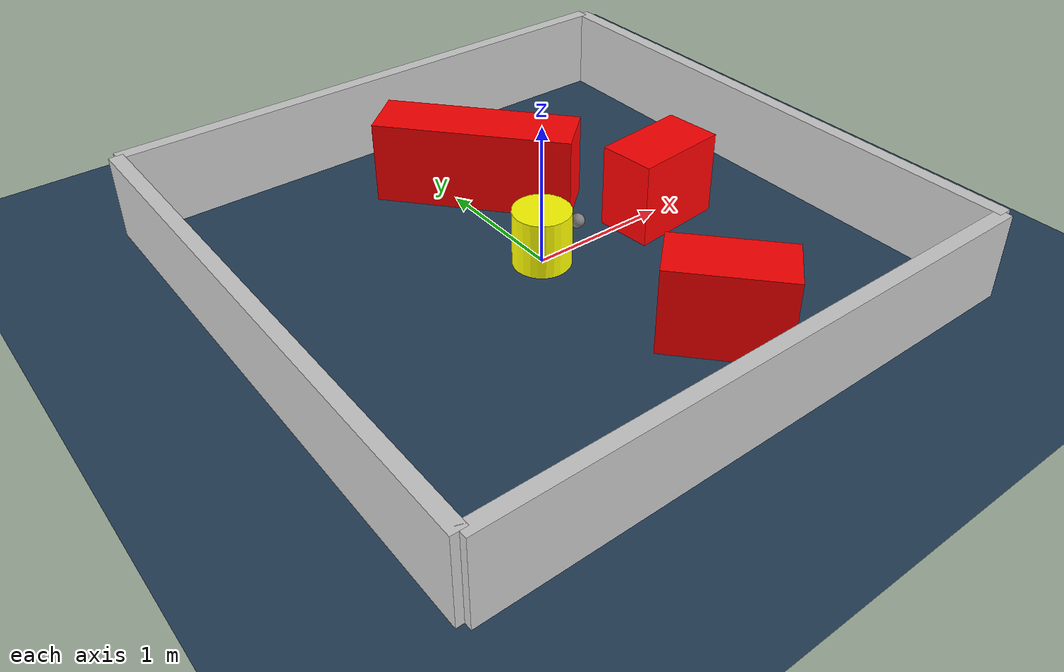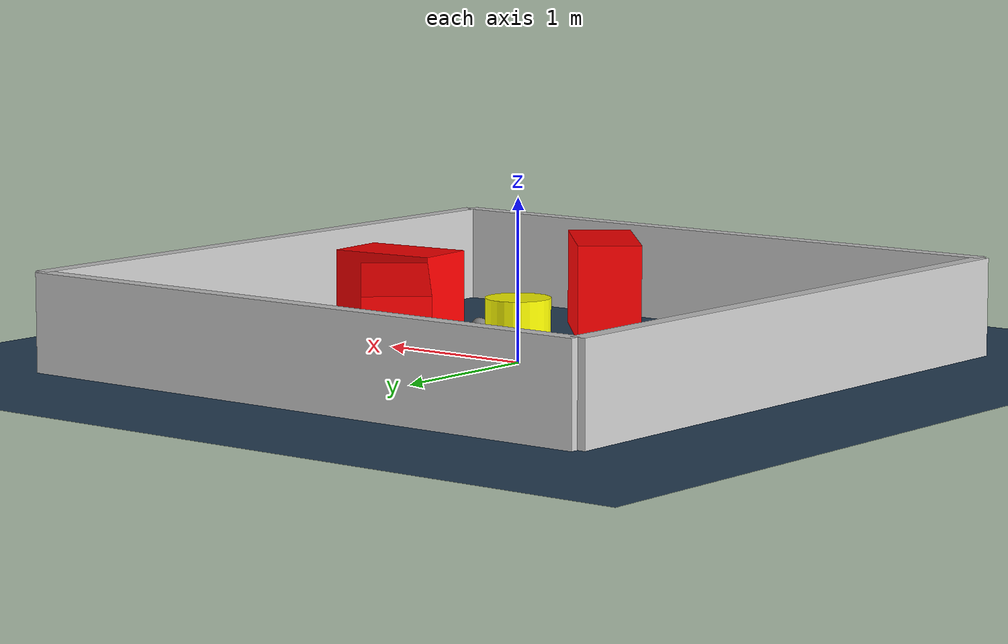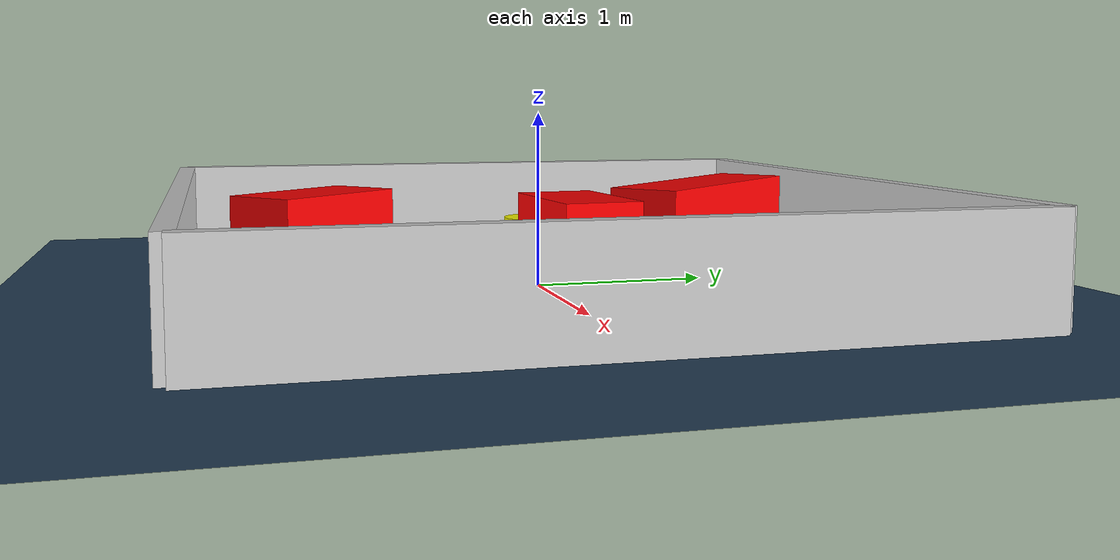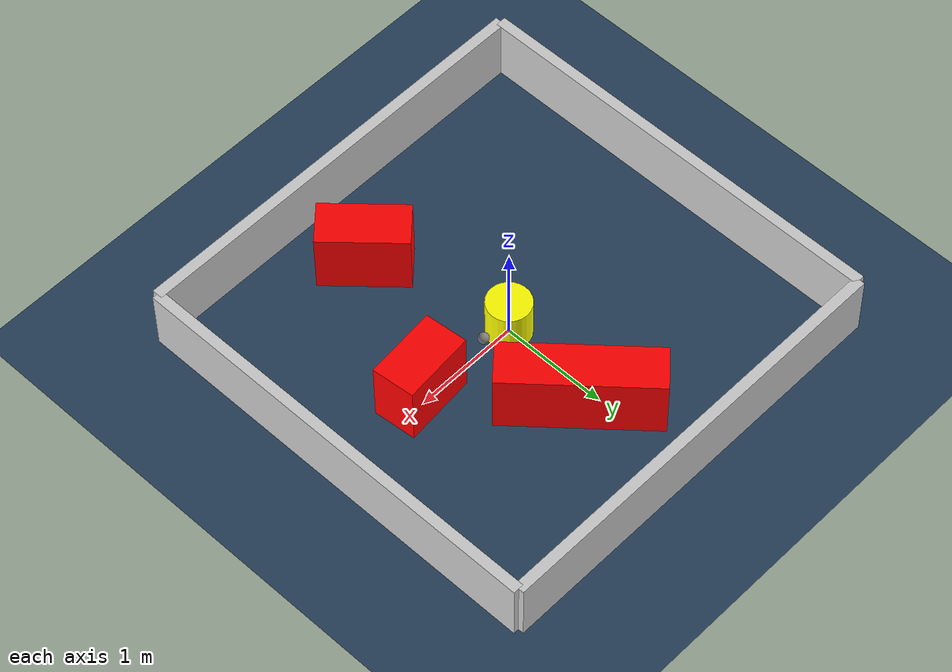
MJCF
<?xml version="1.0" ?>
<mujoco model="generated_environment">
  <option timestep="0.01" integrator="RK4" cone="elliptic"/>
  <default>
    <geom density="1"/>
  </default>
  <asset>
    <texture builtin="gradient" height="3072" rgb1="0.3 0.5 0.7" rgb2="0 0 0" type="skybox" width="512"/>
    <texture builtin="checker" height="300" mark="edge" markrgb="0.8 0.8 0.8" name="groundplane" rgb1="0.2 0.3 0.4" rgb2="0.1 0.2 0.3" type="2d" width="300"/>
    <material name="groundplane" reflectance="0.2" texrepeat="5 5" texture="groundplane" texuniform="true"/>
    <material name="robot" rgba="0.0 1.0 0.0 1"/>
  </asset>
  <worldbody>
    <light dir="0 0 -1" directional="true" pos="0 0 1.5"/>
    <geom condim="4" friction="1.0 0.005 0.001" material="groundplane" name="floor" size="0 0 0.05" type="plane"/>
    <body name="walls">
      <geom name="wall_1" condim="4" pos="-2.0 0.0 0.3" rgba="0.800000011920929 0.800000011920929 0.800000011920929 1.0" size="0.05 2.0 0.3" type="box"/>
      <geom name="wall_2" condim="4" pos="2.0 0.0 0.3" rgba="0.800000011920929 0.800000011920929 0.800000011920929 1.0" size="0.05 2.0 0.3" type="box"/>
      <geom name="wall_3" condim="4" pos="0.0 -2.0 0.3" rgba="0.800000011920929 0.800000011920929 0.800000011920929 1.0" size="2.0 0.05 0.3" type="box"/>
      <geom name="wall_4" condim="4" pos="0.0 2.0 0.3" rgba="0.800000011920929 0.800000011920929 0.800000011920929 1.0" size="2.0 0.05 0.3" type="box"/>
    </body>
    <body name="robot">
      <joint name="joint_x" type="slide" pos="0 0 0" axis="1 0 0"/>
      <joint name="joint_y" type="slide" pos="0 0 0" axis="0 1 0"/>
      <geom name="robot" type="sphere" pos="0.3 0.0 0.2" size="0.05" mass="5." friction="1.0 0.005 0.0001" condim="4" rgba="0.5 0.5 0.5 1.0"/>
      <site name="sensor_ball"/>
    </body>
    <body name="obstacle_movable_1">
      <geom name="obstacle_movable_1" condim="4" pos="0.0 0.0 0.2" euler="0 0 0.0" friction="1.0 0.005 0.001" rgba="1.0 1.0 0.0 1.0" size="0.2 0.2 0.0" type="cylinder" mass="0.1"/>
      <joint type="free"/>
    </body>
    <body name="obstacle_2_static">
      <geom name="obstacle_2_static" condim="4" pos="0.35023619143381146 -1.3105439608066671 0.3" euler="0 0 312.2915687840424" friction="1.0 0.005 0.001" rgba="1 0 0 1" size="0.3978180652650847 0.2 0.3" type="box"/>
    </body>
    <body name="obstacle_3_static">
      <geom name="obstacle_3_static" condim="4" pos="0.1597951177438386 0.9424747501568949 0.3" euler="0 0 131.14849706708603" friction="1.0 0.005 0.001" rgba="1 0 0 1" size="0.7007035570894482 0.2 0.3" type="box"/>
    </body>
    <body name="obstacle_4_static">
      <geom name="obstacle_4_static" condim="4" pos="0.9737913360120884 -0.05351853129232409 0.3" euler="0 0 185.4633895380382" friction="1.0 0.005 0.001" rgba="1 0 0 1" size="0.3396143260944993 0.2 0.3" type="box"/>
    </body>
  </worldbody>
  <actuator>
    <motor name="actuator_x" joint="joint_x" gear="1" ctrlrange="-1 1"/>
    <motor name="actuator_y" joint="joint_y" gear="1" ctrlrange="-1 1"/>
  </actuator>
</mujoco>
